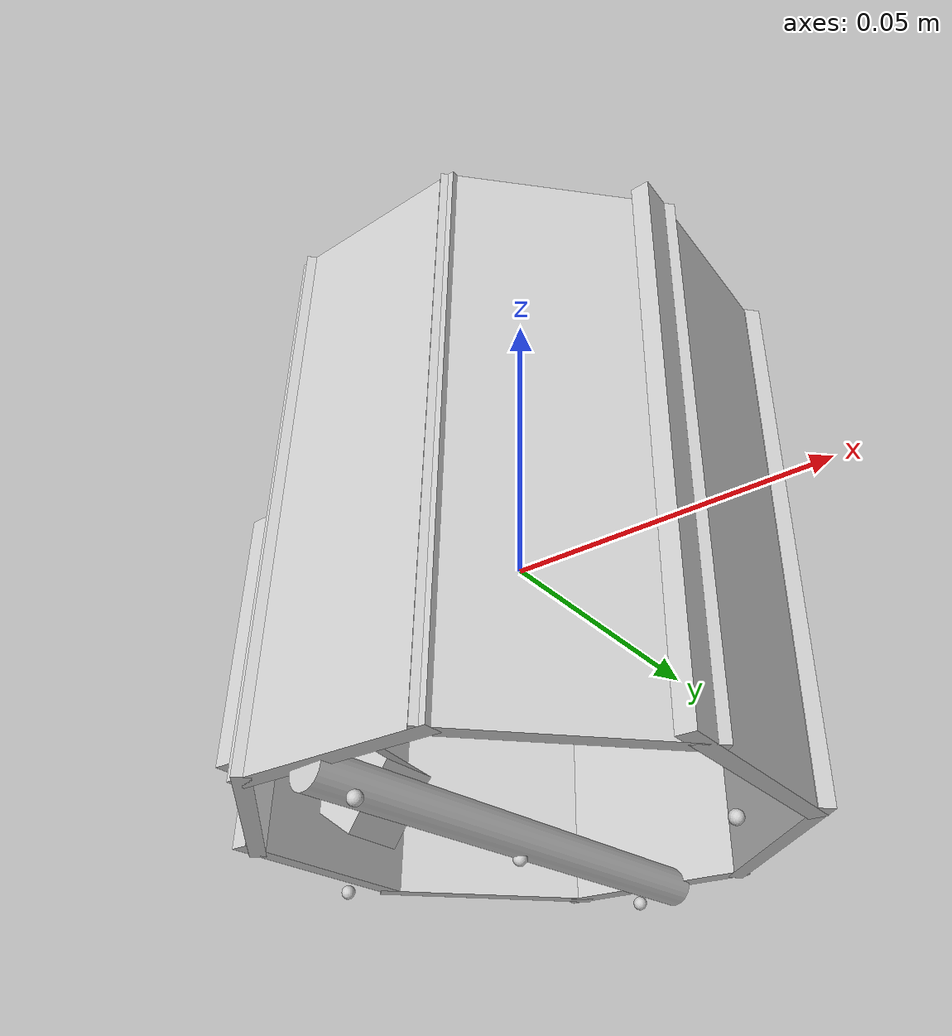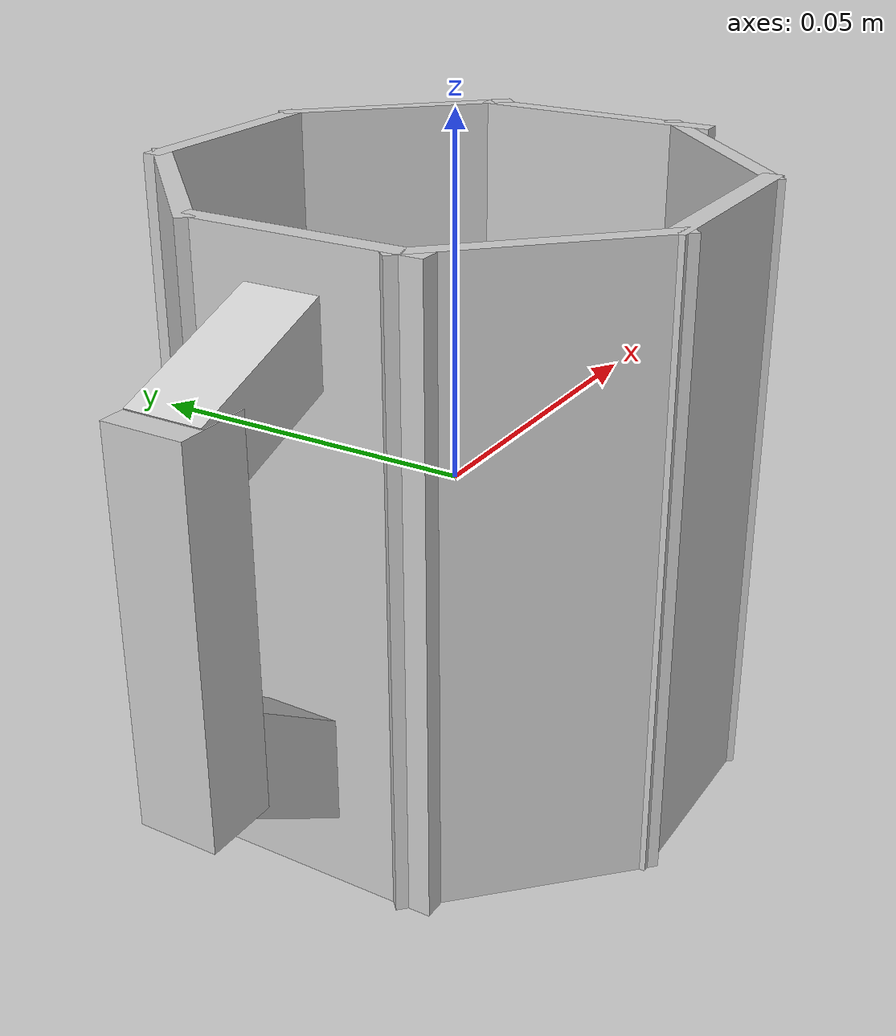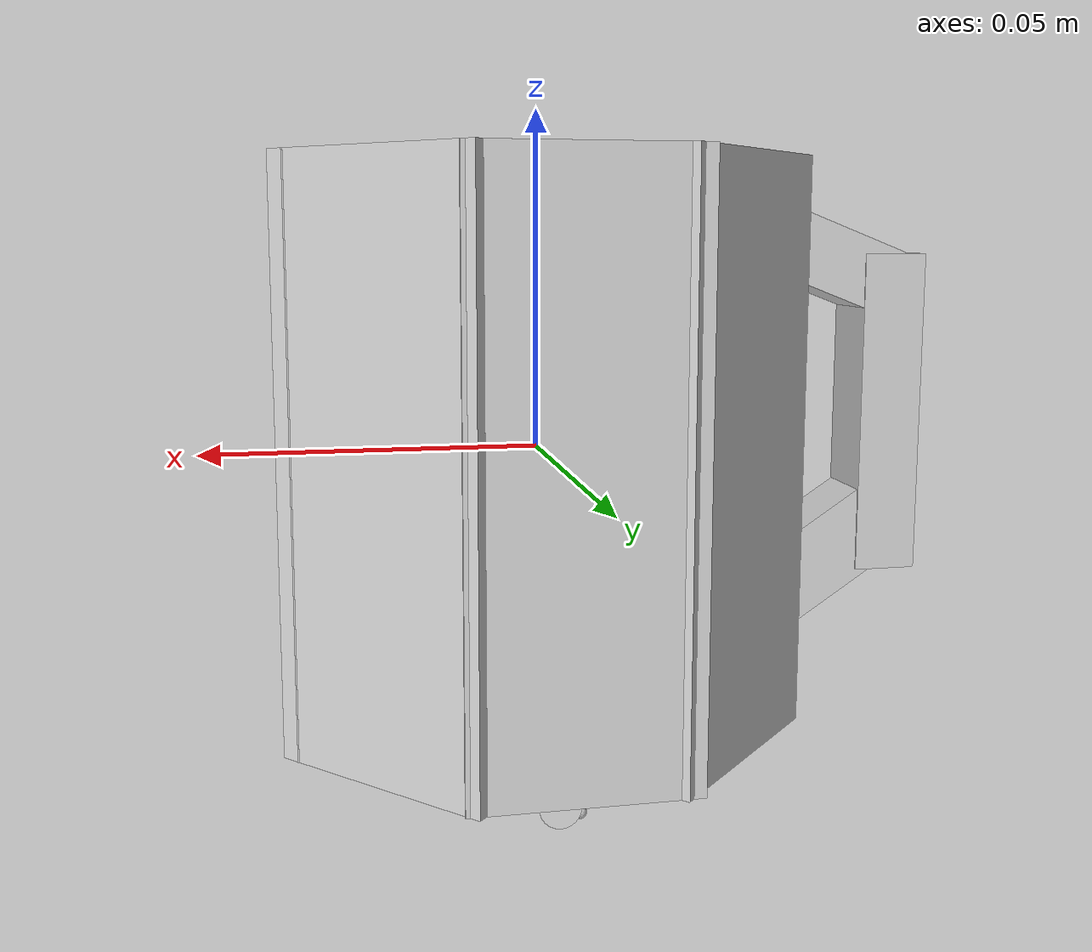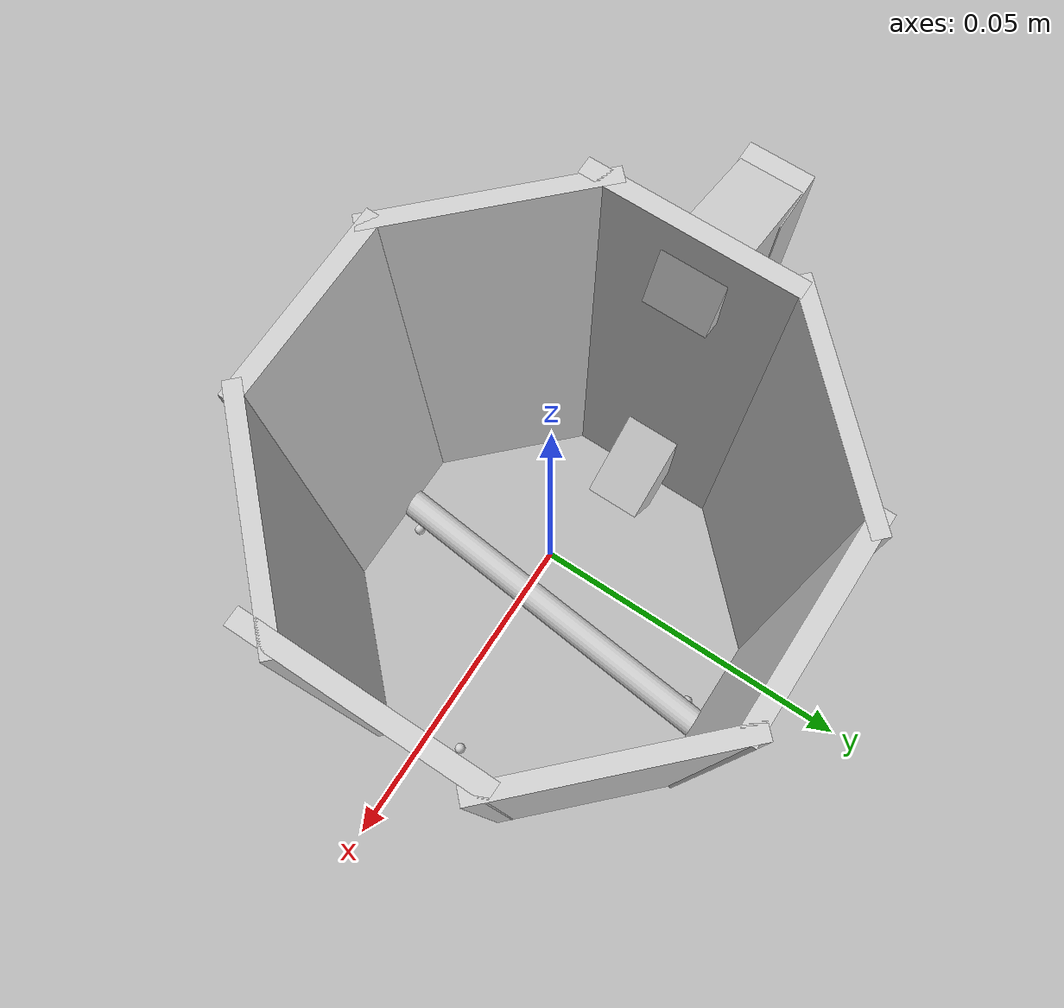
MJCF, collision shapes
<mujoco model="mug">
  <asset>
  <texture file="meshes/mug/robosuite-logo.png" name="tex-mug" type="2d" />
  <material name="mug" reflectance="0.5" texrepeat="1 1" texture="tex-mug" texuniform="false" />
  <mesh file="meshes/mug/visual/mug_vis.msh" name="mug_vis" scale="0.4 0.4 0.4" /></asset>
  <worldbody>
    <body>
      <body name="object">
      <geom solimp="0.998 0.998 0.001" solref="0.001 1" density="100" friction="0.95 0.3 0.1" type="mesh" mesh="mug_vis" conaffinity="0" contype="0" group="1" material="mug" /><geom solimp="0.998 0.998 0.001" solref="0.001 1" density="100" friction="0.95 0.3 0.1" type="box" pos="-0.04354 0.00000 0.02876" quat="0.23325 -0.15999 0.15999 -0.23325" size="0.00507 0.00511 0.01213" group="0" rgba="0.8 0.8 0.8 0.0" /><geom solimp="0.998 0.998 0.001" solref="0.001 1" density="100" friction="0.95 0.3 0.1" type="box" pos="-0.05508 -0.00000 0.00425" quat="0.00000 0.00000 0.40000 0.00000" size="0.00487 0.00525 0.02473" group="0" rgba="0.8 0.8 0.8 0.0" /><geom solimp="0.998 0.998 0.001" solref="0.001 1" density="100" friction="0.95 0.3 0.1" type="box" pos="-0.03881 -0.00000 -0.02241" quat="0.13402 -0.24907 0.24907 -0.13402" size="0.00499 0.00602 0.01785" group="0" rgba="0.8 0.8 0.8 0.0" /><geom solimp="0.998 0.998 0.001" solref="0.001 1" density="100" friction="0.95 0.3 0.1" type="cylinder" pos="-0.00000 0.00000 -0.04123" quat="0.20952 -0.19000 0.20952 0.19000" size="0.00275 0.03608" group="0" rgba="0.8 0.8 0.8 0.0" /><geom solimp="0.998 0.998 0.001" solref="0.001 1" density="100" friction="0.95 0.3 0.1" type="box" pos="-0.03505 -0.00191 0.00107" quat="0.00000 0.00000 -0.00000 0.40000" size="0.00136 0.01617 0.04201" group="0" rgba="0.8 0.8 0.8 0.0" /><geom solimp="0.998 0.998 0.001" solref="0.001 1" density="100" friction="0.95 0.3 0.1" type="box" pos="0.03539 -0.00191 0.00107" quat="0.00000 0.00000 0.40000 0.00000" size="0.00136 0.01771 0.04201" group="0" rgba="0.8 0.8 0.8 0.0" /><geom solimp="0.998 0.998 0.001" solref="0.001 1" density="100" friction="0.95 0.3 0.1" type="box" pos="0.00009 0.03565 0.00107" quat="0.00000 0.28284 0.28284 0.00000" size="0.00136 0.01586 0.04201" group="0" rgba="0.8 0.8 0.8 0.0" /><geom solimp="0.998 0.998 0.001" solref="0.001 1" density="100" friction="0.95 0.3 0.1" type="box" pos="0.00009 -0.03596 0.00107" quat="0.00000 0.28284 0.28284 0.00000" size="0.00136 0.01506 0.04201" group="0" rgba="0.8 0.8 0.8 0.0" /><geom solimp="0.998 0.998 0.001" solref="0.001 1" density="100" friction="0.95 0.3 0.1" type="box" pos="0.02557 0.02504 0.00107" quat="0.00000 -0.15307 0.36955 0.00000" size="0.00122 0.01723 0.04201" group="0" rgba="0.8 0.8 0.8 0.0" /><geom solimp="0.998 0.998 0.001" solref="0.001 1" density="100" friction="0.95 0.3 0.1" type="box" pos="-0.02451 -0.02528 0.00107" quat="-0.00000 -0.36955 -0.15307 -0.00000" size="0.00122 0.01723 0.04201" group="0" rgba="0.8 0.8 0.8 0.0" /><geom solimp="0.998 0.998 0.001" solref="0.001 1" density="100" friction="0.95 0.3 0.1" type="box" pos="-0.02451 0.02479 0.00107" quat="0.00000 -0.36955 0.15307 0.00000" size="0.00122 0.01723 0.04201" group="0" rgba="0.8 0.8 0.8 0.0" /><geom solimp="0.998 0.998 0.001" solref="0.001 1" density="100" friction="0.95 0.3 0.1" type="box" pos="0.02482 -0.02503 0.00107" quat="0.00000 0.15307 0.36955 0.00000" size="0.00122 0.01723 0.04201" group="0" rgba="0.8 0.8 0.8 0.0" /><geom solimp="0.998 0.998 0.001" solref="0.001 1" density="100" friction="0.95 0.3 0.1" type="ellipsoid" pos="-0.00000 0.03124 -0.04407" quat="0.09175 0.18476 -0.28784 -0.18598" size="0.00099 0.00099 0.00100" group="0" rgba="0.8 0.8 0.8 0.0" /><geom solimp="0.998 0.998 0.001" solref="0.001 1" density="100" friction="0.95 0.3 0.1" type="ellipsoid" pos="-0.03124 0.00000 -0.04407" quat="0.38445 0.04905 0.03230 0.09353" size="0.00099 0.00099 0.00100" group="0" rgba="0.8 0.8 0.8 0.0" /><geom solimp="0.998 0.998 0.001" solref="0.001 1" density="100" friction="0.95 0.3 0.1" type="ellipsoid" pos="0.00000 -0.03124 -0.04407" quat="0.18598 0.28784 0.18476 0.09175" size="0.00099 0.00099 0.00100" group="0" rgba="0.8 0.8 0.8 0.0" /><geom solimp="0.998 0.998 0.001" solref="0.001 1" density="100" friction="0.95 0.3 0.1" type="ellipsoid" pos="0.03124 0.00000 -0.04407" quat="0.28784 -0.18598 -0.09175 0.18476" size="0.00099 0.00099 0.00100" group="0" rgba="0.8 0.8 0.8 0.0" /><geom solimp="0.998 0.998 0.001" solref="0.001 1" density="100" friction="0.95 0.3 0.1" type="ellipsoid" pos="0.00000 0.00000 -0.04407" quat="0.18598 0.28784 0.18476 0.09175" size="0.00099 0.00099 0.00100" group="0" rgba="0.8 0.8 0.8 0.0" /></body>
      <site rgba="0 0 0 0" size="0.005" pos="0 0 -0.06" name="bottom_site" />
      <site rgba="0 0 0 0" size="0.005" pos="0 0 0.04" name="top_site" />
      <site rgba="0 0 0 0" size="0.005" pos="0.025 0.025 0" name="horizontal_radius_site" />
    </body>
  </worldbody>
</mujoco>
